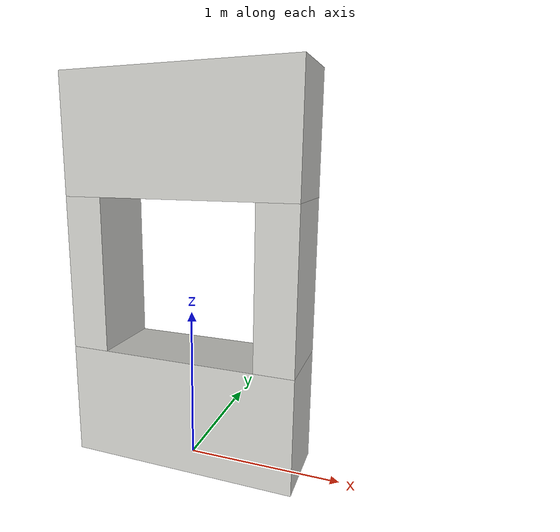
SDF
<?xml version="1.0" ?>
<sdf version="1.5">
  <model name="wall_obstacleA">

    <include>
      <name>big1</name>
      <pose>0 0 0 0 0 1.5708</pose>
      <uri>model://wall_obs_big</uri>
    </include>

    <include>
      <name>small1</name>
      <pose>-0.625 0 0.75 0 0 1.5708</pose>
      <uri>model://wall_obs_small</uri>
    </include>

    <include>
      <name>small2</name>
      <pose>0.625 0 0.75 0 0 1.5708</pose>
      <uri>model://wall_obs_small</uri>
    </include>

    <include>
      <name>big2</name>
      <pose>0 0 1.75 0 0 1.5708</pose>
      <uri>model://wall_obs_big</uri>
    </include>
  </model>
</sdf>

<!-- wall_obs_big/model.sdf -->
<sdf version='1.6'>
  <model name='wall_obs_big'>
    <pose frame=''>0 0 0 0 -0 0</pose>
    <link name='Wall_b'>
      <collision name='Wall_45_Collision'>
        <geometry>
          <box>
            <size>0.5 1.5 0.75</size>
          </box>
        </geometry>
        <pose frame=''>0 0 0.375 0 -0 0</pose>
      </collision>
      <visual name='Wall_45_Visual'>
        <pose frame=''>0 0 0.375 0 -0 0</pose>
        <geometry>
          <box>
            <size>0.5 1.5 0.75</size>
          </box>
        </geometry>
        <material>
          <script>
            <uri>file://media/materials/scripts/gazebo.material</uri>
            <name>Gazebo/CeilingTiled</name>
          </script>
          <ambient>1 1 1 1</ambient>
        </material>
        <meta>
          <layer>0</layer>
        </meta>
      </visual>
        <pose frame=''>0 0 0 0 -0 0</pose>
    </link>
    <static>1</static>
  </model>
</sdf>

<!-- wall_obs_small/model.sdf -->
<sdf version='1.6'>
  <model name='wall_obs_small'>
    <pose frame=''>0 0 0 0 -0 0</pose>
    <link name='Wall_b'>
      <collision name='Wall_45_Collision'>
        <geometry>
          <box>
            <size>0.5 0.25 1</size>
          </box>
        </geometry>
        <pose frame=''>0 0 0.5 0 -0 0</pose>
      </collision>
      <visual name='Wall_45_Visual'>
        <pose frame=''>0 0 0.5 0 -0 0</pose>
        <geometry>
          <box>
            <size>0.5 0.25 1</size>
          </box>
        </geometry>
        <material>
          <script>
            <uri>file://media/materials/scripts/gazebo.material</uri>
            <name>Gazebo/CeilingTiled</name>
          </script>
          <ambient>1 1 1 1</ambient>
        </material>
        <meta>
          <layer>0</layer>
        </meta>
      </visual>
        <pose frame=''>0 0 0 0 -0 0</pose>
    </link>
    <static>1</static>
  </model>
</sdf>
